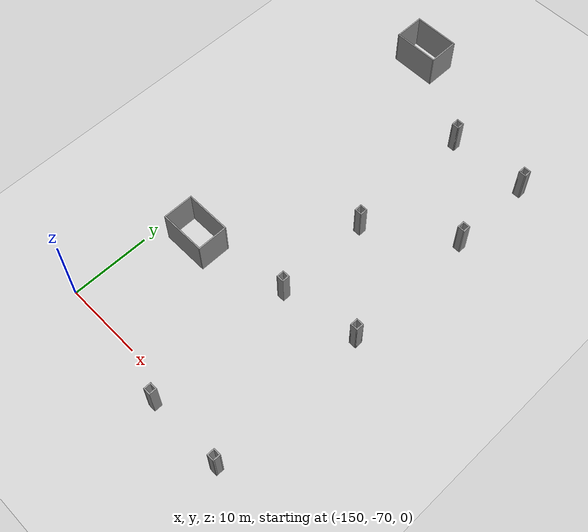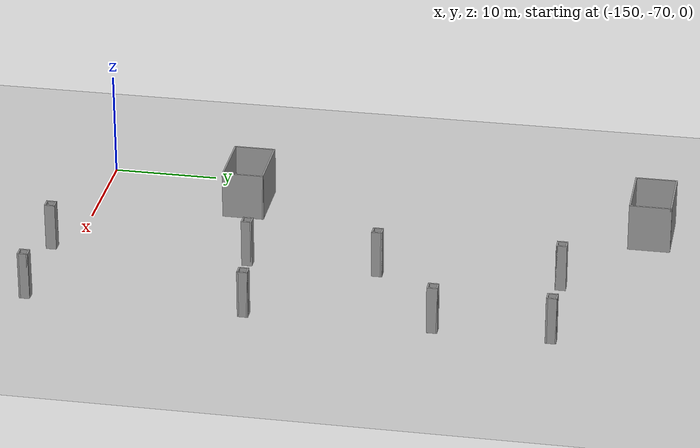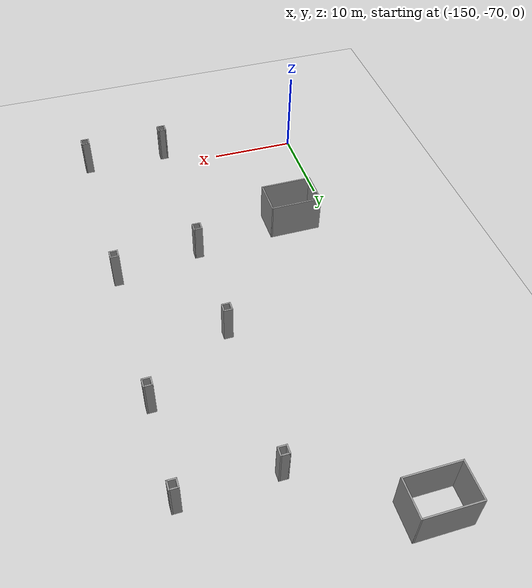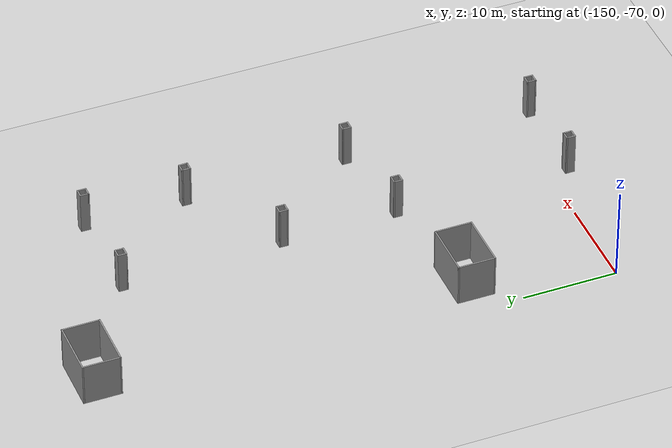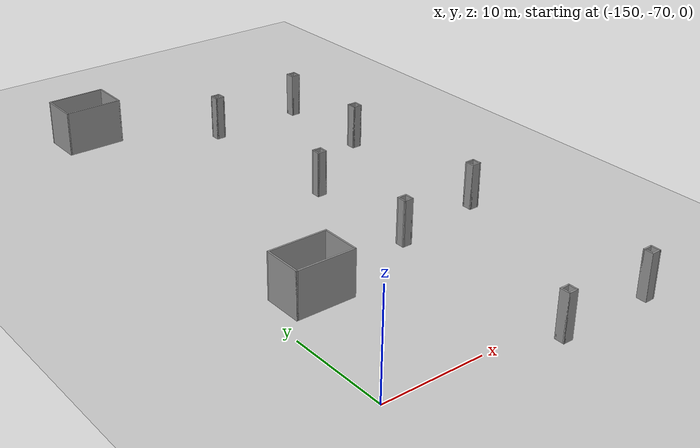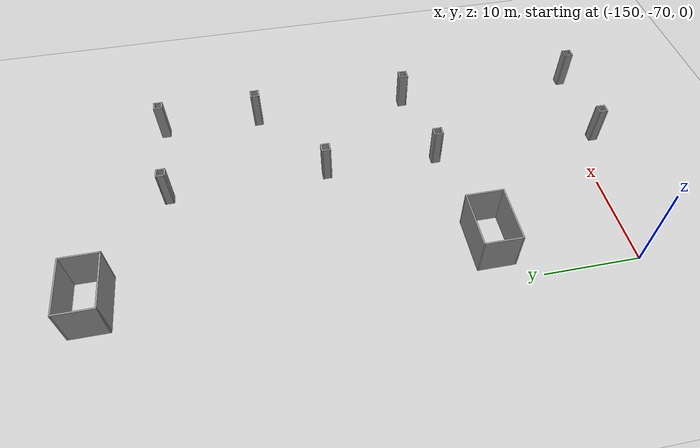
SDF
<sdf version="1.6">
 <world name="default">
  <model name="ground_plane">
   <static>1</static>
   <link name="link">
    <collision name="collision">
     <geometry><plane><normal>0 0 1</normal><size>320 320</size></plane></geometry>
     <surface>
      <contact><collide_bitmask>65535</collide_bitmask></contact>
      <friction><ode><mu>100</mu><mu2>50</mu2></ode></friction>
     </surface>
    </collision>
    <visual name="visual">
     <cast_shadows>0</cast_shadows>
     <geometry><plane><normal>0 0 1</normal><size>320 320</size></plane></geometry>
     <material>
      <script><uri>file://media/materials/scripts/gazebo.material</uri><name>Gazebo/Grey</name></script>
     </material>
    </visual>
   </link>
  </model>
  <model name="base4x6_8_clone_4">
   <pose>-145.279 -16.8378 0 0 -0 0</pose>
   <link name="Wall_23">
    <collision name="Wall_23_Collision">
     <geometry><box><size>4 0.15 6.555</size></box></geometry>
     <pose>0 0 1.25 0 -0 0</pose>
    </collision>
    <visual name="Wall_23_Visual">
     <pose>0 0 1.25 0 -0 0</pose>
     <geometry><box><size>4 0.15 6.555</size></box></geometry>
     <material>
      <script><uri>file://media/materials/scripts/gazebo.material</uri><name>Gazebo/Grey</name></script>
      <ambient>1 1 1 1</ambient>
     </material>
     <meta><layer>0</layer></meta>
    </visual>
    <pose>-2.925 0 0 0 -0 -1.5708</pose>
   </link>
   <link name="Wall_24">
    <collision name="Wall_24_Collision">
     <geometry><box><size>6 0.15 6.555</size></box></geometry>
     <pose>0 0 1.25 0 -0 0</pose>
    </collision>
    <visual name="Wall_24_Visual">
     <pose>0 0 1.25 0 -0 0</pose>
     <geometry><box><size>6 0.15 6.555</size></box></geometry>
     <material>
      <script><uri>file://media/materials/scripts/gazebo.material</uri><name>Gazebo/Grey</name></script>
      <ambient>1 1 1 1</ambient>
     </material>
     <meta><layer>0</layer></meta>
    </visual>
    <pose>-0 -1.925 0 0 -0 0</pose>
   </link>
   <link name="Wall_25">
    <collision name="Wall_25_Collision">
     <geometry><box><size>4 0.15 6.555</size></box></geometry>
     <pose>0 0 1.25 0 -0 0</pose>
    </collision>
    <visual name="Wall_25_Visual">
     <pose>0 0 1.25 0 -0 0</pose>
     <geometry><box><size>4 0.15 6.555</size></box></geometry>
     <material>
      <script><uri>file://media/materials/scripts/gazebo.material</uri><name>Gazebo/Grey</name></script>
      <ambient>1 1 1 1</ambient>
     </material>
     <meta><layer>0</layer></meta>
    </visual>
    <pose>2.925 0 0 0 -0 1.5708</pose>
   </link>
   <link name="Wall_26">
    <collision name="Wall_26_Collision">
     <geometry><box><size>6 0.15 6.555</size></box></geometry>
     <pose>0 0 1.25 0 -0 0</pose>
    </collision>
    <visual name="Wall_26_Visual">
     <pose>0 0 1.25 0 -0 0</pose>
     <geometry><box><size>6 0.15 6.555</size></box></geometry>
     <material>
      <script><uri>file://media/materials/scripts/gazebo.material</uri><name>Gazebo/Grey</name></script>
      <ambient>1 1 1 1</ambient>
     </material>
     <meta><layer>0</layer></meta>
    </visual>
    <pose>-0 1.925 0 0 -0 3.14159</pose>
   </link>
   <static>1</static>
  </model>
  <model name="base4x6_8_clone_5">
   <pose>-145.285 -55.7062 0 0 -0 0</pose>
   <link name="Wall_23">
    <collision name="Wall_23_Collision">
     <geometry><box><size>4 0.15 6.555</size></box></geometry>
     <pose>0 0 1.25 0 -0 0</pose>
    </collision>
    <visual name="Wall_23_Visual">
     <pose>0 0 1.25 0 -0 0</pose>
     <geometry><box><size>4 0.15 6.555</size></box></geometry>
     <material>
      <script><uri>file://media/materials/scripts/gazebo.material</uri><name>Gazebo/Grey</name></script>
      <ambient>1 1 1 1</ambient>
     </material>
     <meta><layer>0</layer></meta>
    </visual>
    <pose>-2.925 0 0 0 -0 -1.5708</pose>
   </link>
   <link name="Wall_24">
    <collision name="Wall_24_Collision">
     <geometry><box><size>6 0.15 6.555</size></box></geometry>
     <pose>0 0 1.25 0 -0 0</pose>
    </collision>
    <visual name="Wall_24_Visual">
     <pose>0 0 1.25 0 -0 0</pose>
     <geometry><box><size>6 0.15 6.555</size></box></geometry>
     <material>
      <script><uri>file://media/materials/scripts/gazebo.material</uri><name>Gazebo/Grey</name></script>
      <ambient>1 1 1 1</ambient>
     </material>
     <meta><layer>0</layer></meta>
    </visual>
    <pose>-0 -1.925 0 0 -0 0</pose>
   </link>
   <link name="Wall_25">
    <collision name="Wall_25_Collision">
     <geometry><box><size>4 0.15 6.555</size></box></geometry>
     <pose>0 0 1.25 0 -0 0</pose>
    </collision>
    <visual name="Wall_25_Visual">
     <pose>0 0 1.25 0 -0 0</pose>
     <geometry><box><size>4 0.15 6.555</size></box></geometry>
     <material>
      <script><uri>file://media/materials/scripts/gazebo.material</uri><name>Gazebo/Grey</name></script>
      <ambient>1 1 1 1</ambient>
     </material>
     <meta><layer>0</layer></meta>
    </visual>
    <pose>2.925 0 0 0 -0 1.5708</pose>
   </link>
   <link name="Wall_26">
    <collision name="Wall_26_Collision">
     <geometry><box><size>6 0.15 6.555</size></box></geometry>
     <pose>0 0 1.25 0 -0 0</pose>
    </collision>
    <visual name="Wall_26_Visual">
     <pose>0 0 1.25 0 -0 0</pose>
     <geometry><box><size>6 0.15 6.555</size></box></geometry>
     <material>
      <script><uri>file://media/materials/scripts/gazebo.material</uri><name>Gazebo/Grey</name></script>
      <ambient>1 1 1 1</ambient>
     </material>
     <meta><layer>0</layer></meta>
    </visual>
    <pose>-0 1.925 0 0 -0 3.14159</pose>
   </link>
   <static>1</static>
  </model>
  <model name="box_1mx1m_15_clone_7">
   <pose>-123.617 -23.7675 0 0 -0 0</pose>
   <link name="Wall_10">
    <collision name="Wall_10_Collision">
     <geometry><box><size>1 0.15 6.555</size></box></geometry>
     <pose>0 0 1.25 0 -0 0</pose>
    </collision>
    <visual name="Wall_10_Visual">
     <pose>0 0 1.25 0 -0 0</pose>
     <geometry><box><size>1 0.15 6.555</size></box></geometry>
     <material>
      <script><uri>file://media/materials/scripts/gazebo.material</uri><name>Gazebo/Grey</name></script>
      <ambient>1 1 1 1</ambient>
     </material>
     <meta><layer>0</layer></meta>
    </visual>
    <pose>-0.425 0 0 0 -0 -1.5708</pose>
   </link>
   <link name="Wall_11">
    <collision name="Wall_11_Collision">
     <geometry><box><size>1 0.15 6.555</size></box></geometry>
     <pose>0 0 1.25 0 -0 0</pose>
    </collision>
    <visual name="Wall_11_Visual">
     <pose>0 0 1.25 0 -0 0</pose>
     <geometry><box><size>1 0.15 6.555</size></box></geometry>
     <material>
      <script><uri>file://media/materials/scripts/gazebo.material</uri><name>Gazebo/Grey</name></script>
      <ambient>1 1 1 1</ambient>
     </material>
     <meta><layer>0</layer></meta>
    </visual>
    <pose>0 -0.425 0 0 -0 0</pose>
   </link>
   <link name="Wall_12">
    <collision name="Wall_12_Collision">
     <geometry><box><size>1 0.15 6.555</size></box></geometry>
     <pose>0 0 1.25 0 -0 0</pose>
    </collision>
    <visual name="Wall_12_Visual">
     <pose>0 0 1.25 0 -0 0</pose>
     <geometry><box><size>1 0.15 6.555</size></box></geometry>
     <material>
      <script><uri>file://media/materials/scripts/gazebo.material</uri><name>Gazebo/Grey</name></script>
      <ambient>1 1 1 1</ambient>
     </material>
     <meta><layer>0</layer></meta>
    </visual>
    <pose>0.425 0 0 0 -0 1.5708</pose>
   </link>
   <link name="Wall_13">
    <collision name="Wall_13_Collision">
     <geometry><box><size>1 0.15 6.555</size></box></geometry>
     <pose>0 0 1.25 0 -0 0</pose>
    </collision>
    <visual name="Wall_13_Visual">
     <pose>0 0 1.25 0 -0 0</pose>
     <geometry><box><size>1 0.15 6.555</size></box></geometry>
     <material>
      <script><uri>file://media/materials/scripts/gazebo.material</uri><name>Gazebo/Grey</name></script>
      <ambient>1 1 1 1</ambient>
     </material>
     <meta><layer>0</layer></meta>
    </visual>
    <pose>0 0.425 0 0 -0 3.14159</pose>
   </link>
   <static>1</static>
  </model>
  <model name="box_1mx1m_15_clone_8">
   <pose>-123.674 -34.5063 0 0 -0 0</pose>
   <link name="Wall_10">
    <collision name="Wall_10_Collision">
     <geometry><box><size>1 0.15 6.555</size></box></geometry>
     <pose>0 0 1.25 0 -0 0</pose>
    </collision>
    <visual name="Wall_10_Visual">
     <pose>0 0 1.25 0 -0 0</pose>
     <geometry><box><size>1 0.15 6.555</size></box></geometry>
     <material>
      <script><uri>file://media/materials/scripts/gazebo.material</uri><name>Gazebo/Grey</name></script>
      <ambient>1 1 1 1</ambient>
     </material>
     <meta><layer>0</layer></meta>
    </visual>
    <pose>-0.425 0 0 0 -0 -1.5708</pose>
   </link>
   <link name="Wall_11">
    <collision name="Wall_11_Collision">
     <geometry><box><size>1 0.15 6.555</size></box></geometry>
     <pose>0 0 1.25 0 -0 0</pose>
    </collision>
    <visual name="Wall_11_Visual">
     <pose>0 0 1.25 0 -0 0</pose>
     <geometry><box><size>1 0.15 6.555</size></box></geometry>
     <material>
      <script><uri>file://media/materials/scripts/gazebo.material</uri><name>Gazebo/Grey</name></script>
      <ambient>1 1 1 1</ambient>
     </material>
     <meta><layer>0</layer></meta>
    </visual>
    <pose>0 -0.425 0 0 -0 0</pose>
   </link>
   <link name="Wall_12">
    <collision name="Wall_12_Collision">
     <geometry><box><size>1 0.15 6.555</size></box></geometry>
     <pose>0 0 1.25 0 -0 0</pose>
    </collision>
    <visual name="Wall_12_Visual">
     <pose>0 0 1.25 0 -0 0</pose>
     <geometry><box><size>1 0.15 6.555</size></box></geometry>
     <material>
      <script><uri>file://media/materials/scripts/gazebo.material</uri><name>Gazebo/Grey</name></script>
      <ambient>1 1 1 1</ambient>
     </material>
     <meta><layer>0</layer></meta>
    </visual>
    <pose>0.425 0 0 0 -0 1.5708</pose>
   </link>
   <link name="Wall_13">
    <collision name="Wall_13_Collision">
     <geometry><box><size>1 0.15 6.555</size></box></geometry>
     <pose>0 0 1.25 0 -0 0</pose>
    </collision>
    <visual name="Wall_13_Visual">
     <pose>0 0 1.25 0 -0 0</pose>
     <geometry><box><size>1 0.15 6.555</size></box></geometry>
     <material>
      <script><uri>file://media/materials/scripts/gazebo.material</uri><name>Gazebo/Grey</name></script>
      <ambient>1 1 1 1</ambient>
     </material>
     <meta><layer>0</layer></meta>
    </visual>
    <pose>0 0.425 0 0 -0 3.14159</pose>
   </link>
   <static>1</static>
  </model>
  <model name="box_1mx1m_15_clone_9">
   <pose>-123.639 -51.8128 0 0 -0 0</pose>
   <link name="Wall_10">
    <collision name="Wall_10_Collision">
     <geometry><box><size>1 0.15 6.555</size></box></geometry>
     <pose>0 0 1.25 0 -0 0</pose>
    </collision>
    <visual name="Wall_10_Visual">
     <pose>0 0 1.25 0 -0 0</pose>
     <geometry><box><size>1 0.15 6.555</size></box></geometry>
     <material>
      <script><uri>file://media/materials/scripts/gazebo.material</uri><name>Gazebo/Grey</name></script>
      <ambient>1 1 1 1</ambient>
     </material>
     <meta><layer>0</layer></meta>
    </visual>
    <pose>-0.425 0 0 0 -0 -1.5708</pose>
   </link>
   <link name="Wall_11">
    <collision name="Wall_11_Collision">
     <geometry><box><size>1 0.15 6.555</size></box></geometry>
     <pose>0 0 1.25 0 -0 0</pose>
    </collision>
    <visual name="Wall_11_Visual">
     <pose>0 0 1.25 0 -0 0</pose>
     <geometry><box><size>1 0.15 6.555</size></box></geometry>
     <material>
      <script><uri>file://media/materials/scripts/gazebo.material</uri><name>Gazebo/Grey</name></script>
      <ambient>1 1 1 1</ambient>
     </material>
     <meta><layer>0</layer></meta>
    </visual>
    <pose>0 -0.425 0 0 -0 0</pose>
   </link>
   <link name="Wall_12">
    <collision name="Wall_12_Collision">
     <geometry><box><size>1 0.15 6.555</size></box></geometry>
     <pose>0 0 1.25 0 -0 0</pose>
    </collision>
    <visual name="Wall_12_Visual">
     <pose>0 0 1.25 0 -0 0</pose>
     <geometry><box><size>1 0.15 6.555</size></box></geometry>
     <material>
      <script><uri>file://media/materials/scripts/gazebo.material</uri><name>Gazebo/Grey</name></script>
      <ambient>1 1 1 1</ambient>
     </material>
     <meta><layer>0</layer></meta>
    </visual>
    <pose>0.425 0 0 0 -0 1.5708</pose>
   </link>
   <link name="Wall_13">
    <collision name="Wall_13_Collision">
     <geometry><box><size>1 0.15 6.555</size></box></geometry>
     <pose>0 0 1.25 0 -0 0</pose>
    </collision>
    <visual name="Wall_13_Visual">
     <pose>0 0 1.25 0 -0 0</pose>
     <geometry><box><size>1 0.15 6.555</size></box></geometry>
     <material>
      <script><uri>file://media/materials/scripts/gazebo.material</uri><name>Gazebo/Grey</name></script>
      <ambient>1 1 1 1</ambient>
     </material>
     <meta><layer>0</layer></meta>
    </visual>
    <pose>0 0.425 0 0 -0 3.14159</pose>
   </link>
   <static>1</static>
  </model>
  <model name="box_1mx1m_15_clone_10">
   <pose>-123.638 -72.1843 0 0 -0 0</pose>
   <link name="Wall_10">
    <collision name="Wall_10_Collision">
     <geometry><box><size>1 0.15 6.555</size></box></geometry>
     <pose>0 0 1.25 0 -0 0</pose>
    </collision>
    <visual name="Wall_10_Visual">
     <pose>0 0 1.25 0 -0 0</pose>
     <geometry><box><size>1 0.15 6.555</size></box></geometry>
     <material>
      <script><uri>file://media/materials/scripts/gazebo.material</uri><name>Gazebo/Grey</name></script>
      <ambient>1 1 1 1</ambient>
     </material>
     <meta><layer>0</layer></meta>
    </visual>
    <pose>-0.425 0 0 0 -0 -1.5708</pose>
   </link>
   <link name="Wall_11">
    <collision name="Wall_11_Collision">
     <geometry><box><size>1 0.15 6.555</size></box></geometry>
     <pose>0 0 1.25 0 -0 0</pose>
    </collision>
    <visual name="Wall_11_Visual">
     <pose>0 0 1.25 0 -0 0</pose>
     <geometry><box><size>1 0.15 6.555</size></box></geometry>
     <material>
      <script><uri>file://media/materials/scripts/gazebo.material</uri><name>Gazebo/Grey</name></script>
      <ambient>1 1 1 1</ambient>
     </material>
     <meta><layer>0</layer></meta>
    </visual>
    <pose>0 -0.425 0 0 -0 0</pose>
   </link>
   <link name="Wall_12">
    <collision name="Wall_12_Collision">
     <geometry><box><size>1 0.15 6.555</size></box></geometry>
     <pose>0 0 1.25 0 -0 0</pose>
    </collision>
    <visual name="Wall_12_Visual">
     <pose>0 0 1.25 0 -0 0</pose>
     <geometry><box><size>1 0.15 6.555</size></box></geometry>
     <material>
      <script><uri>file://media/materials/scripts/gazebo.material</uri><name>Gazebo/Grey</name></script>
      <ambient>1 1 1 1</ambient>
     </material>
     <meta><layer>0</layer></meta>
    </visual>
    <pose>0.425 0 0 0 -0 1.5708</pose>
   </link>
   <link name="Wall_13">
    <collision name="Wall_13_Collision">
     <geometry><box><size>1 0.15 6.555</size></box></geometry>
     <pose>0 0 1.25 0 -0 0</pose>
    </collision>
    <visual name="Wall_13_Visual">
     <pose>0 0 1.25 0 -0 0</pose>
     <geometry><box><size>1 0.15 6.555</size></box></geometry>
     <material>
      <script><uri>file://media/materials/scripts/gazebo.material</uri><name>Gazebo/Grey</name></script>
      <ambient>1 1 1 1</ambient>
     </material>
     <meta><layer>0</layer></meta>
    </visual>
    <pose>0 0.425 0 0 -0 3.14159</pose>
   </link>
   <static>1</static>
  </model>
  <model name="box_1mx1m_15_clone_2_clone_4">
   <pose>-133.64 -24.0943 0 0 -0 0</pose>
   <link name="Wall_10">
    <collision name="Wall_10_Collision">
     <geometry><box><size>1 0.15 6.555</size></box></geometry>
     <pose>0 0 1.25 0 -0 0</pose>
    </collision>
    <visual name="Wall_10_Visual">
     <pose>0 0 1.25 0 -0 0</pose>
     <geometry><box><size>1 0.15 6.555</size></box></geometry>
     <material>
      <script><uri>file://media/materials/scripts/gazebo.material</uri><name>Gazebo/Grey</name></script>
      <ambient>1 1 1 1</ambient>
     </material>
     <meta><layer>0</layer></meta>
    </visual>
    <pose>-0.425 0 0 0 -0 -1.5708</pose>
   </link>
   <link name="Wall_11">
    <collision name="Wall_11_Collision">
     <geometry><box><size>1 0.15 6.555</size></box></geometry>
     <pose>0 0 1.25 0 -0 0</pose>
    </collision>
    <visual name="Wall_11_Visual">
     <pose>0 0 1.25 0 -0 0</pose>
     <geometry><box><size>1 0.15 6.555</size></box></geometry>
     <material>
      <script><uri>file://media/materials/scripts/gazebo.material</uri><name>Gazebo/Grey</name></script>
      <ambient>1 1 1 1</ambient>
     </material>
     <meta><layer>0</layer></meta>
    </visual>
    <pose>0 -0.425 0 0 -0 0</pose>
   </link>
   <link name="Wall_12">
    <collision name="Wall_12_Collision">
     <geometry><box><size>1 0.15 6.555</size></box></geometry>
     <pose>0 0 1.25 0 -0 0</pose>
    </collision>
    <visual name="Wall_12_Visual">
     <pose>0 0 1.25 0 -0 0</pose>
     <geometry><box><size>1 0.15 6.555</size></box></geometry>
     <material>
      <script><uri>file://media/materials/scripts/gazebo.material</uri><name>Gazebo/Grey</name></script>
      <ambient>1 1 1 1</ambient>
     </material>
     <meta><layer>0</layer></meta>
    </visual>
    <pose>0.425 0 0 0 -0 1.5708</pose>
   </link>
   <link name="Wall_13">
    <collision name="Wall_13_Collision">
     <geometry><box><size>1 0.15 6.555</size></box></geometry>
     <pose>0 0 1.25 0 -0 0</pose>
    </collision>
    <visual name="Wall_13_Visual">
     <pose>0 0 1.25 0 -0 0</pose>
     <geometry><box><size>1 0.15 6.555</size></box></geometry>
     <material>
      <script><uri>file://media/materials/scripts/gazebo.material</uri><name>Gazebo/Grey</name></script>
      <ambient>1 1 1 1</ambient>
     </material>
     <meta><layer>0</layer></meta>
    </visual>
    <pose>0 0.425 0 0 -0 3.14159</pose>
   </link>
   <static>1</static>
  </model>
  <model name="box_1mx1m_15_clone_2_clone_5">
   <pose>-133.335 -41.1465 0 0 -0 0</pose>
   <link name="Wall_10">
    <collision name="Wall_10_Collision">
     <geometry><box><size>1 0.15 6.555</size></box></geometry>
     <pose>0 0 1.25 0 -0 0</pose>
    </collision>
    <visual name="Wall_10_Visual">
     <pose>0 0 1.25 0 -0 0</pose>
     <geometry><box><size>1 0.15 6.555</size></box></geometry>
     <material>
      <script><uri>file://media/materials/scripts/gazebo.material</uri><name>Gazebo/Grey</name></script>
      <ambient>1 1 1 1</ambient>
     </material>
     <meta><layer>0</layer></meta>
    </visual>
    <pose>-0.425 0 0 0 -0 -1.5708</pose>
   </link>
   <link name="Wall_11">
    <collision name="Wall_11_Collision">
     <geometry><box><size>1 0.15 6.555</size></box></geometry>
     <pose>0 0 1.25 0 -0 0</pose>
    </collision>
    <visual name="Wall_11_Visual">
     <pose>0 0 1.25 0 -0 0</pose>
     <geometry><box><size>1 0.15 6.555</size></box></geometry>
     <material>
      <script><uri>file://media/materials/scripts/gazebo.material</uri><name>Gazebo/Grey</name></script>
      <ambient>1 1 1 1</ambient>
     </material>
     <meta><layer>0</layer></meta>
    </visual>
    <pose>0 -0.425 0 0 -0 0</pose>
   </link>
   <link name="Wall_12">
    <collision name="Wall_12_Collision">
     <geometry><box><size>1 0.15 6.555</size></box></geometry>
     <pose>0 0 1.25 0 -0 0</pose>
    </collision>
    <visual name="Wall_12_Visual">
     <pose>0 0 1.25 0 -0 0</pose>
     <geometry><box><size>1 0.15 6.555</size></box></geometry>
     <material>
      <script><uri>file://media/materials/scripts/gazebo.material</uri><name>Gazebo/Grey</name></script>
      <ambient>1 1 1 1</ambient>
     </material>
     <meta><layer>0</layer></meta>
    </visual>
    <pose>0.425 0 0 0 -0 1.5708</pose>
   </link>
   <link name="Wall_13">
    <collision name="Wall_13_Collision">
     <geometry><box><size>1 0.15 6.555</size></box></geometry>
     <pose>0 0 1.25 0 -0 0</pose>
    </collision>
    <visual name="Wall_13_Visual">
     <pose>0 0 1.25 0 -0 0</pose>
     <geometry><box><size>1 0.15 6.555</size></box></geometry>
     <material>
      <script><uri>file://media/materials/scripts/gazebo.material</uri><name>Gazebo/Grey</name></script>
      <ambient>1 1 1 1</ambient>
     </material>
     <meta><layer>0</layer></meta>
    </visual>
    <pose>0 0.425 0 0 -0 3.14159</pose>
   </link>
   <static>1</static>
  </model>
  <model name="box_1mx1m_15_clone_2_clone_6">
   <pose>-133.335 -53.4071 0 0 -0 0</pose>
   <link name="Wall_10">
    <collision name="Wall_10_Collision">
     <geometry><box><size>1 0.15 6.555</size></box></geometry>
     <pose>0 0 1.25 0 -0 0</pose>
    </collision>
    <visual name="Wall_10_Visual">
     <pose>0 0 1.25 0 -0 0</pose>
     <geometry><box><size>1 0.15 6.555</size></box></geometry>
     <material>
      <script><uri>file://media/materials/scripts/gazebo.material</uri><name>Gazebo/Grey</name></script>
      <ambient>1 1 1 1</ambient>
     </material>
     <meta><layer>0</layer></meta>
    </visual>
    <pose>-0.425 0 0 0 -0 -1.5708</pose>
   </link>
   <link name="Wall_11">
    <collision name="Wall_11_Collision">
     <geometry><box><size>1 0.15 6.555</size></box></geometry>
     <pose>0 0 1.25 0 -0 0</pose>
    </collision>
    <visual name="Wall_11_Visual">
     <pose>0 0 1.25 0 -0 0</pose>
     <geometry><box><size>1 0.15 6.555</size></box></geometry>
     <material>
      <script><uri>file://media/materials/scripts/gazebo.material</uri><name>Gazebo/Grey</name></script>
      <ambient>1 1 1 1</ambient>
     </material>
     <meta><layer>0</layer></meta>
    </visual>
    <pose>0 -0.425 0 0 -0 0</pose>
   </link>
   <link name="Wall_12">
    <collision name="Wall_12_Collision">
     <geometry><box><size>1 0.15 6.555</size></box></geometry>
     <pose>0 0 1.25 0 -0 0</pose>
    </collision>
    <visual name="Wall_12_Visual">
     <pose>0 0 1.25 0 -0 0</pose>
     <geometry><box><size>1 0.15 6.555</size></box></geometry>
     <material>
      <script><uri>file://media/materials/scripts/gazebo.material</uri><name>Gazebo/Grey</name></script>
      <ambient>1 1 1 1</ambient>
     </material>
     <meta><layer>0</layer></meta>
    </visual>
    <pose>0.425 0 0 0 -0 1.5708</pose>
   </link>
   <link name="Wall_13">
    <collision name="Wall_13_Collision">
     <geometry><box><size>1 0.15 6.555</size></box></geometry>
     <pose>0 0 1.25 0 -0 0</pose>
    </collision>
    <visual name="Wall_13_Visual">
     <pose>0 0 1.25 0 -0 0</pose>
     <geometry><box><size>1 0.15 6.555</size></box></geometry>
     <material>
      <script><uri>file://media/materials/scripts/gazebo.material</uri><name>Gazebo/Grey</name></script>
      <ambient>1 1 1 1</ambient>
     </material>
     <meta><layer>0</layer></meta>
    </visual>
    <pose>0 0.425 0 0 -0 3.14159</pose>
   </link>
   <static>1</static>
  </model>
  <model name="box_1mx1m_15_clone_2_clone_7">
   <pose>-133.422 -72.1952 0 0 -0 0</pose>
   <link name="Wall_10">
    <collision name="Wall_10_Collision">
     <geometry><box><size>1 0.15 6.555</size></box></geometry>
     <pose>0 0 1.25 0 -0 0</pose>
    </collision>
    <visual name="Wall_10_Visual">
     <pose>0 0 1.25 0 -0 0</pose>
     <geometry><box><size>1 0.15 6.555</size></box></geometry>
     <material>
      <script><uri>file://media/materials/scripts/gazebo.material</uri><name>Gazebo/Grey</name></script>
      <ambient>1 1 1 1</ambient>
     </material>
     <meta><layer>0</layer></meta>
    </visual>
    <pose>-0.425 0 0 0 -0 -1.5708</pose>
   </link>
   <link name="Wall_11">
    <collision name="Wall_11_Collision">
     <geometry><box><size>1 0.15 6.555</size></box></geometry>
     <pose>0 0 1.25 0 -0 0</pose>
    </collision>
    <visual name="Wall_11_Visual">
     <pose>0 0 1.25 0 -0 0</pose>
     <geometry><box><size>1 0.15 6.555</size></box></geometry>
     <material>
      <script><uri>file://media/materials/scripts/gazebo.material</uri><name>Gazebo/Grey</name></script>
      <ambient>1 1 1 1</ambient>
     </material>
     <meta><layer>0</layer></meta>
    </visual>
    <pose>0 -0.425 0 0 -0 0</pose>
   </link>
   <link name="Wall_12">
    <collision name="Wall_12_Collision">
     <geometry><box><size>1 0.15 6.555</size></box></geometry>
     <pose>0 0 1.25 0 -0 0</pose>
    </collision>
    <visual name="Wall_12_Visual">
     <pose>0 0 1.25 0 -0 0</pose>
     <geometry><box><size>1 0.15 6.555</size></box></geometry>
     <material>
      <script><uri>file://media/materials/scripts/gazebo.material</uri><name>Gazebo/Grey</name></script>
      <ambient>1 1 1 1</ambient>
     </material>
     <meta><layer>0</layer></meta>
    </visual>
    <pose>0.425 0 0 0 -0 1.5708</pose>
   </link>
   <link name="Wall_13">
    <collision name="Wall_13_Collision">
     <geometry><box><size>1 0.15 6.555</size></box></geometry>
     <pose>0 0 1.25 0 -0 0</pose>
    </collision>
    <visual name="Wall_13_Visual">
     <pose>0 0 1.25 0 -0 0</pose>
     <geometry><box><size>1 0.15 6.555</size></box></geometry>
     <material>
      <script><uri>file://media/materials/scripts/gazebo.material</uri><name>Gazebo/Grey</name></script>
      <ambient>1 1 1 1</ambient>
     </material>
     <meta><layer>0</layer></meta>
    </visual>
    <pose>0 0.425 0 0 -0 3.14159</pose>
   </link>
   <static>1</static>
  </model>
 </world>
</sdf>
